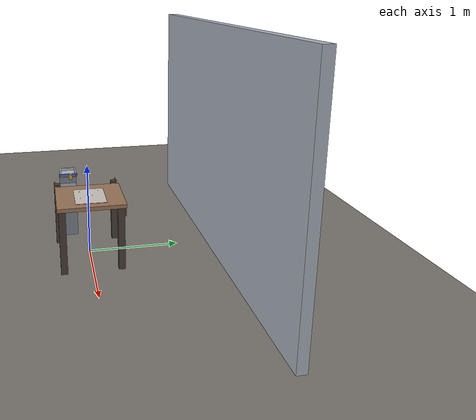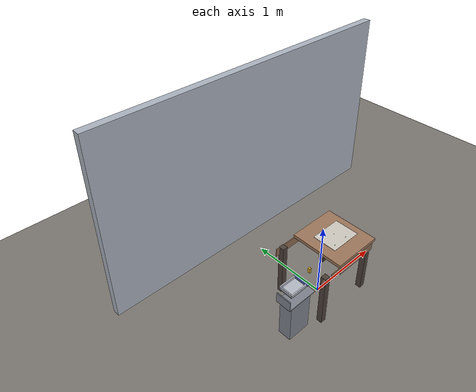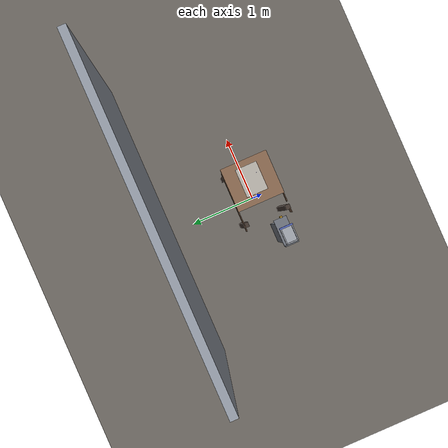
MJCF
<mujoco model="dinner_table_world">
  <compiler angle="radian" autolimits="true"/>
  <option timestep="0.005" integrator="implicitfast" cone="elliptic"
          iterations="10" ls_iterations="20" impratio="10"/>

  <visual>
    <global offwidth="1280" offheight="720"/>
    <headlight ambient="0.35 0.35 0.35" diffuse="0.55 0.55 0.55" specular="0.1 0.1 0.1"/>
  </visual>

  <asset>
    <texture name="skybox" type="skybox" builtin="gradient"
             rgb1="0.42 0.48 0.60" rgb2="0.85 0.88 0.92" width="256" height="256"/>
    <texture name="floor_tex" type="2d" builtin="checker" rgb1="0.55 0.53 0.50" rgb2="0.42 0.40 0.38"
             width="300" height="300"/>
    <material name="floor_mat" texture="floor_tex" texuniform="true" texrepeat="4 4" reflectance="0.05"/>
    <material name="counter_top" rgba="0.62 0.47 0.36 1"/>
    <material name="counter_leg" rgba="0.30 0.25 0.22 1"/>
    <material name="cabinet_mat" rgba="0.50 0.52 0.56 1"/>
    <material name="drawer_mat" rgba="0.36 0.44 0.78 1"/>
    <material name="drawer_inner" rgba="0.72 0.74 0.78 1"/>
    <material name="handle_mat" rgba="0.85 0.65 0.15 1"/>
  </asset>

  <worldbody>
    <light name="key_light" pos="0.2 -0.8 2.6" dir="0 0.25 -1" directional="true"
           diffuse="0.75 0.75 0.8" specular="0.15 0.15 0.2" castshadow="true"/>
    <light name="fill_light" pos="1.6 0.9 2.0" dir="-0.55 -0.3 -1" directional="true"
           diffuse="0.4 0.42 0.46" specular="0 0 0"/>

    <geom name="floor" type="plane" size="0 0 0.05" material="floor_mat"
          condim="3" friction="1 0.005 0.0001"/>

    <!-- Backdrop wall (behind the counter, +y side; rgba randomized per seed) -->
    <geom name="backdrop" type="box" pos="0.2 1.4 1.25" size="2.2 0.05 1.25"
          rgba="0.68 0.71 0.76 1"/>

    <body name="counter" pos="0.05 0 0">
      <geom name="countertop" type="box" pos="0.175 0 0.73" size="0.325 0.35 0.02" material="counter_top"/>
      <!-- apron / back panel (+y side) -->
      <geom name="counter_back" type="box" pos="0 0.345 0.655" size="0.45 0.005 0.055" rgba="0.55 0.42 0.32 1"/>
      <!-- front skirt on the -y side but ONLY where the drawer is NOT
           (drawer cavity occupies x in world [-0.37,-0.11], i.e. counter
           local x [-0.42,-0.16]) -->
      <geom name="counter_skirt_a" type="box" pos="-0.415 -0.345 0.655" size="0.035 0.005 0.055" rgba="0.55 0.42 0.32 1"/>
      <geom name="counter_skirt_b" type="box" pos="0.16 -0.345 0.655" size="0.29 0.005 0.055" rgba="0.55 0.42 0.32 1"/>
      <!-- skirt above the drawer opening (thin lip) -->
      <geom name="counter_skirt_c" type="box" pos="-0.13 -0.345 0.685" size="0.155 0.005 0.025" rgba="0.55 0.42 0.32 1"/>
      <!-- legs (the -x pair sits clear of the drawer slide path at
           y in [-0.27,-0.09]; shifted to y = ±0.32) -->
      <geom name="leg_1" type="box" pos="-0.36 0.32 0.355" size="0.035 0.035 0.355" material="counter_leg"/>
      <geom name="leg_2" type="box" pos="-0.36 -0.32 0.355" size="0.035 0.035 0.355" material="counter_leg"/>
      <geom name="leg_3" type="box" pos="0.40 0.30 0.355" size="0.035 0.035 0.355" material="counter_leg"/>
      <geom name="leg_4" type="box" pos="0.40 -0.30 0.355" size="0.035 0.035 0.355" material="counter_leg"/>

      <body name="drawer_unit" pos="-0.73 -0.18 0">  <!-- child of counter; world x = -0.68 -->
        <!-- cabinet pedestal to the floor (the unit previously floated) -->
        <geom name="shell_pedestal" type="box" pos="0.05 0 0.26" size="0.15 0.085 0.26" material="cabinet_mat"/>
        <!-- cabinet bottom (under tray, full slide length) -->
        <geom name="shell_bottom" type="box" pos="0.06 0 0.529" size="0.20 0.10 0.006" material="cabinet_mat"/>
        <!-- cabinet back (-x end) -->
        <geom name="shell_back" type="box" pos="-0.14 0 0.595" size="0.006 0.10 0.066" material="cabinet_mat"/>
        <!-- (no cabinet sides: the drawer front must pass — see the
             drawer-cycle stress test in the test suite) -->

        <body name="drawer" pos="0 0 0">
          <joint name="drawer_slide" type="slide" axis="1 0 0" range="0 0.26"
                 damping="1.2" frictionloss="2.0" armature="0.01"/>
          <!-- front panel (closed front face at world x = -0.5525) -->
          <geom name="drawer_front" type="box" pos="0.1275 0 0.7275" size="0.0125 0.10 0.0125" material="drawer_mat"/>
          <geom name="drawer_front_side" type="box" pos="0.1275 0.085 0.72" size="0.0125 0.015 0.010" material="drawer_mat"/>
          <geom name="drawer_handle" type="box" pos="0.282 0.018 0.758" size="0.012 0.015 0.030"
                material="handle_mat" friction="1.2 0.005 0.0001"/>
          <!-- floor (top at world z = 0.710) -->
          <geom name="drawer_floor" type="box" pos="0 0 0.704" size="0.115 0.09 0.006" material="drawer_inner"/>
          <!-- side walls -->
          <geom name="drawer_wall_n" type="box" pos="0 0.085 0.725" size="0.115 0.0075 0.015" material="drawer_inner"/>
          <geom name="drawer_wall_s" type="box" pos="0 -0.085 0.725" size="0.115 0.0075 0.015" material="drawer_inner"/>
          <!-- back wall -->
          <geom name="drawer_back" type="box" pos="-0.1075 0 0.725" size="0.0075 0.09 0.015" material="drawer_inner"/>
        </body>
      </body>
    </body>

    <body name="placemat" pos="0.25 0 0.752">
      <geom name="placemat_pad" type="box" pos="0 0 0.0015" size="0.21 0.16 0.0015"
            rgba="0.82 0.80 0.76 1" friction="1.0 0.005 0.0001"/>
      <site name="slot_plate"  pos="0.00  0.03 0.004" size="0.004" rgba="0.9 0.1 0.1 0.5"/>
      <site name="slot_fork"   pos="-0.14 -0.10 0.004" size="0.004" rgba="0.1 0.9 0.1 0.5"/>
      <site name="slot_spoon"  pos="-0.14  0.10 0.004" size="0.004" rgba="0.1 0.9 0.1 0.5"/>
      <site name="slot_mug"    pos="0.06 -0.10 0.004" size="0.004" rgba="0.1 0.1 0.9 0.5"/>
    </body>

    <!-- wide 3/4 view (hero camera for the demo video) -->
    <camera name="overview" pos="1.35 -1.35 1.6" xyaxes="0.7203 0.6936 0 -0.278 0.2887 0.9161" fovy="45"/>
    <!-- top-down of the whole workspace -->
    <camera name="overhead" pos="0.0 -0.05 1.75" xyaxes="1 0 0 0 1 0" fovy="50"/>
    <!-- close-up on the drawer (opens toward +x) -->
    <camera name="drawer_cam" pos="-0.60 -0.95 1.10" xyaxes="0.9979 -0.0648 0 0.03318 0.511 0.8589" fovy="55"/>
    <!-- close-up on the placemat -->
    <camera name="placemat_cam" pos="0.60 -0.85 1.25" xyaxes="0.9247 0.3807 0 -0.1733 0.4209 0.8904" fovy="50"/>
    <!-- top-down of placemat for pose perception -->
    <camera name="wrist_top" pos="0.25 0 0.95" xyaxes="1 0 0 0 1 0" fovy="40"/>
  </worldbody>
</mujoco>
